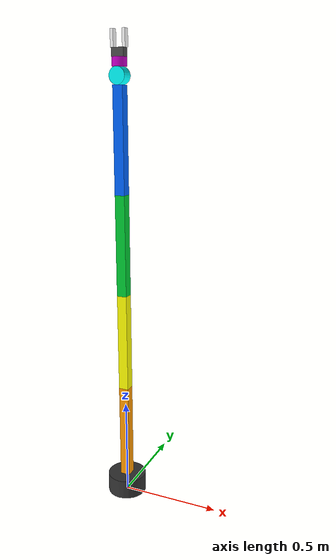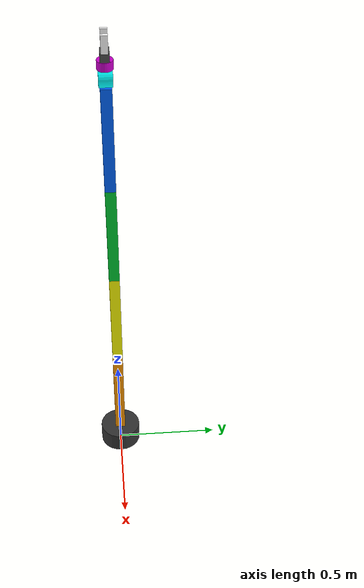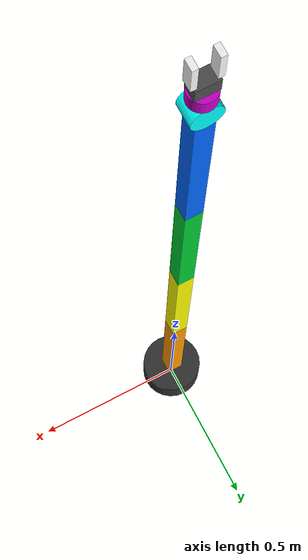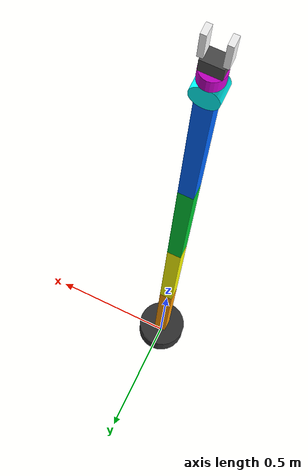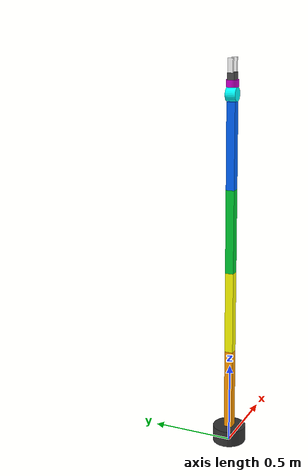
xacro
<?xml version="1.0"?>
<!-- Z(Yaw) - Y(Pitch) - Y(Pitch) - X(Roll) - Y(Pitch) - Z(Yaw) -->
<robot xmlns:xacro="http://www.ros.org/wiki/xacro" name="my_robot">

  <xacro:property name="base_radius" value="0.1"/>
  <xacro:property name="base_height" value="0.1"/>
  <xacro:property name="link_len" value="0.5"/>
  <xacro:property name="link_width" value="0.05"/>
  <xacro:property name="link_mass" value="1.0"/>

  <xacro:macro name="box_inertia" params="m w h d com_x com_y com_z">
    <inertial>
      <origin xyz="${com_x} ${com_y} ${com_z}" rpy="0 0 0"/>
      <mass value="${m}"/>
      <inertia ixx="${(m/12) * (h*h + d*d)}" ixy="0.0" ixz="0.0"
               iyy="${(m/12) * (w*w + d*d)}" iyz="0.0"
               izz="${(m/12) * (w*w + h*h)}"/>
    </inertial>
  </xacro:macro>

  <xacro:macro name="cylinder_inertia" params="m r h com_x com_y com_z">
    <inertial>
      <origin xyz="${com_x} ${com_y} ${com_z}" rpy="0 0 0"/>
      <mass value="${m}"/>
      <inertia ixx="${(m/12) * (3*r*r + h*h)}" ixy="0.0" ixz="0.0"
               iyy="${(m/12) * (3*r*r + h*h)}" iyz="0.0"
               izz="${(m/2) * (r*r)}"/>
    </inertial>
  </xacro:macro>

  <xacro:macro name="arm_link_macro" params="name color_name r g b">
    <link name="${name}">
      <visual>
        <geometry>
          <box size="${link_width} ${link_width} ${link_len}"/>
        </geometry>
        <origin xyz="0 0 ${link_len/2}" rpy="0 0 0"/>
        <material name="${color_name}">
          <color rgba="${r} ${g} ${b} 1"/>
        </material>
      </visual>
      <collision name="${name}_collision">
        <geometry>
          <box size="${link_width} ${link_width} ${link_len}"/>
        </geometry>
        <origin xyz="0 0 ${link_len/2}" rpy="0 0 0"/>
      </collision>
      <xacro:box_inertia m="${link_mass}" w="${link_width}" h="${link_len}" d="${link_width}" com_x="0" com_y="0" com_z="${link_len/2}"/>
    </link>
  </xacro:macro>

  <link name="base_link">
    <visual>
      <geometry>
        <cylinder length="${base_height}" radius="${base_radius}"/>
      </geometry>
      <origin xyz="0 0 ${base_height/2}" rpy="0 0 0"/>
      <material name="gray"><color rgba="0.2 0.2 0.2 1"/></material>
    </visual>
    <collision name="base_link_collision">
      <geometry><cylinder length="${base_height}" radius="${base_radius}"/></geometry>
      <origin xyz="0 0 ${base_height/2}" rpy="0 0 0"/>
    </collision>
    <xacro:cylinder_inertia m="10.0" r="${base_radius}" h="${base_height}" com_x="0" com_y="0" com_z="${base_height/2}"/>
  </link>

  <!-- link 1 -->
  <xacro:arm_link_macro name="link1" color_name="orange" r="1" g="0.6" b="0"/>
  <!-- joint1 : Z (Base Yaw) -->
  <joint name="joint1" type="revolute">
    <parent link="base_link"/>
    <child link="link1"/>
    <origin xyz="0 0 ${base_height}" rpy="0 0 0"/>
    <axis xyz="0 0 1"/> <limit lower="-3.14159" upper="3.14159" effort="100" velocity="1.0"/>
  </joint>

  <!-- link 2 -->
  <xacro:arm_link_macro name="link2" color_name="yellow" r="1" g="1" b="0"/>
  <!-- joint2 : Y (Shoulder Pitch) -->
  <joint name="joint2" type="revolute">
    <parent link="link1"/>
    <child link="link2"/>
    <origin xyz="0 0 ${link_len}" rpy="0 0 0"/>
    <axis xyz="0 1 0"/> <limit lower="-1.57079" upper="1.57079" effort="100" velocity="1.0"/>
  </joint>

  <!-- link 3 -->
  <xacro:arm_link_macro name="link3" color_name="green" r="0" g="0.8" b="0.2"/>
  <!-- joint3 : Y (Elbow Pitch) -->
  <joint name="joint3" type="revolute">
    <parent link="link2"/>
    <child link="link3"/>
    <origin xyz="0 0 ${link_len}" rpy="0 0 0"/>
    <axis xyz="0 1 0"/> <limit lower="-2.0944" upper="2.0944" effort="100" velocity="1.5"/>
  </joint>

  <!-- link 4 -->
  <xacro:arm_link_macro name="link4" color_name="blue" r="0" g="0.4" b="1"/>
  <!-- joint4 : X (Wrist Roll) -->
  <joint name="joint4" type="revolute">
    <parent link="link3"/>
    <child link="link4"/>
    <origin xyz="0 0 ${link_len}" rpy="0 0 0"/>
    <axis xyz="1 0 0"/> <limit lower="-3.14159" upper="3.14159" effort="100" velocity="2.0"/>
  </joint>

  <!-- link 5 -->
  <link name="link_wrist_pitch">
    <visual>
      <geometry><cylinder radius="0.04" length="0.06"/></geometry>
      <material name="cyan"><color rgba="0 1 1 1"/></material>
      <origin xyz="0 0 0.04" rpy="1.5708 0 0"/>
    </visual>
    <collision name="wrist_pitch_collision">
      <geometry><cylinder radius="0.04" length="0.06"/></geometry>
      <origin xyz="0 0 0.04" rpy="1.5708 0 0"/>
    </collision>
    <xacro:cylinder_inertia m="0.3" r="0.04" h="0.06" com_x="0" com_y="0" com_z="0.04"/>
  </link>
  <!-- joint5 : Y (Wrist Pitch) -->
  <joint name="joint5" type="revolute">
    <parent link="link4"/>
    <child link="link_wrist_pitch"/>
    <origin xyz="0 0 ${link_len}" rpy="0 0 0"/>
    <axis xyz="0 1 0"/>
    <limit lower="-1.5708" upper="1.5708" effort="50" velocity="2.5"/>
  </joint>

  <!-- link 6 -->
  <link name="link_wrist_yaw">
    <visual>
      <geometry><cylinder radius="0.035" length="0.04"/></geometry>
      <material name="purple"><color rgba="0.8 0 0.8 1"/></material>
      <origin xyz="0 0 0.02" rpy="0 0 0"/>
    </visual>
    <collision name="wrist_yaw_collision">
      <geometry><cylinder radius="0.035" length="0.04"/></geometry>
      <origin xyz="0 0 0.02" rpy="0 0 0"/>
    </collision>
    <xacro:cylinder_inertia m="0.2" r="0.035" h="0.04" com_x="0" com_y="0" com_z="0.02"/>
  </link>
  <!-- joint6 : Z (Wrist Yaw) -->
  <joint name="joint6" type="revolute">
    <parent link="link_wrist_pitch"/>
    <child link="link_wrist_yaw"/>
    <origin xyz="0 0 0.08" rpy="0 0 0"/>
    <axis xyz="0 0 1"/>
    <limit lower="-3.14159" upper="3.14159" effort="50" velocity="3.0"/>
  </joint>

  <!-- TCP -->
  <link name="tool0">
    <visual>
      <geometry><sphere radius="0.01"/></geometry>
      <material name="red"><color rgba="1 0 0 1"/></material>
    </visual>
  </link>
  <joint name="tool0_fixed" type="fixed">
    <parent link="link_wrist_yaw"/>
    <child link="tool0"/>
    <origin xyz="0 0 0.04" rpy="0 0 0"/>
  </joint>

  <!-- Gripper Base -->
  <link name="gripper_base">
    <visual>
      <geometry><box size="0.06 0.04 0.04"/></geometry>
      <material name="dark_gray"><color rgba="0.3 0.3 0.3 1"/></material>
      <origin xyz="0 0 0.02" rpy="0 0 0"/>
    </visual>
    <collision name="gripper_base_collision">
      <geometry><box size="0.06 0.04 0.04"/></geometry>
      <origin xyz="0 0 0.02" rpy="0 0 0"/>
    </collision>
    <xacro:box_inertia m="0.1" w="0.06" h="0.04" d="0.04" com_x="0" com_y="0" com_z="0.02"/>
  </link>
  <joint name="gripper_base_fixed" type="fixed">
    <parent link="tool0"/>
    <child link="gripper_base"/>
    <origin xyz="0 0 0" rpy="0 0 0"/>
  </joint>

  <!-- Finger1 -->
  <link name="finger1">
    <visual>
      <geometry><box size="0.015 0.03 0.08"/></geometry>
      <origin xyz="0 0 0.04" rpy="0 0 0"/>
      <material name="white"><color rgba="1 1 1 1"/></material>
    </visual>
    <collision name="finger1_collision">
      <geometry><box size="0.015 0.03 0.08"/></geometry>
      <origin xyz="0 0 0.04" rpy="0 0 0"/>
    </collision>
    <xacro:box_inertia m="0.05" w="0.015" h="0.03" d="0.08" com_x="0" com_y="0" com_z="0.04"/>
  </link>
  <joint name="joint_finger1" type="prismatic">
    <parent link="gripper_base"/>
    <child link="finger1"/>
    <origin xyz="-0.03 0 0.04" rpy="0 0 0"/>
    <axis xyz="1 0 0"/>
    <limit lower="0.0" upper="0.025" effort="20" velocity="0.2"/>
  </joint>

  <!-- Finger2 -->
  <link name="finger2">
    <visual>
      <geometry><box size="0.015 0.03 0.08"/></geometry>
      <origin xyz="0 0 0.04" rpy="0 0 0"/>
      <material name="white"/>
    </visual>
    <collision name="finger2_collision">
      <geometry><box size="0.015 0.03 0.08"/></geometry>
      <origin xyz="0 0 0.04" rpy="0 0 0"/>
    </collision>
    <xacro:box_inertia m="0.05" w="0.015" h="0.03" d="0.08" com_x="0" com_y="0" com_z="0.04"/>
  </link>
  <joint name="joint_finger2" type="prismatic">
    <parent link="gripper_base"/>
    <child link="finger2"/>
    <origin xyz="0.03 0 0.04" rpy="0 0 0"/>
    <axis xyz="-1 0 0"/>
    <limit lower="0.0" upper="0.025" effort="20" velocity="0.2"/>
  </joint>

</robot>
